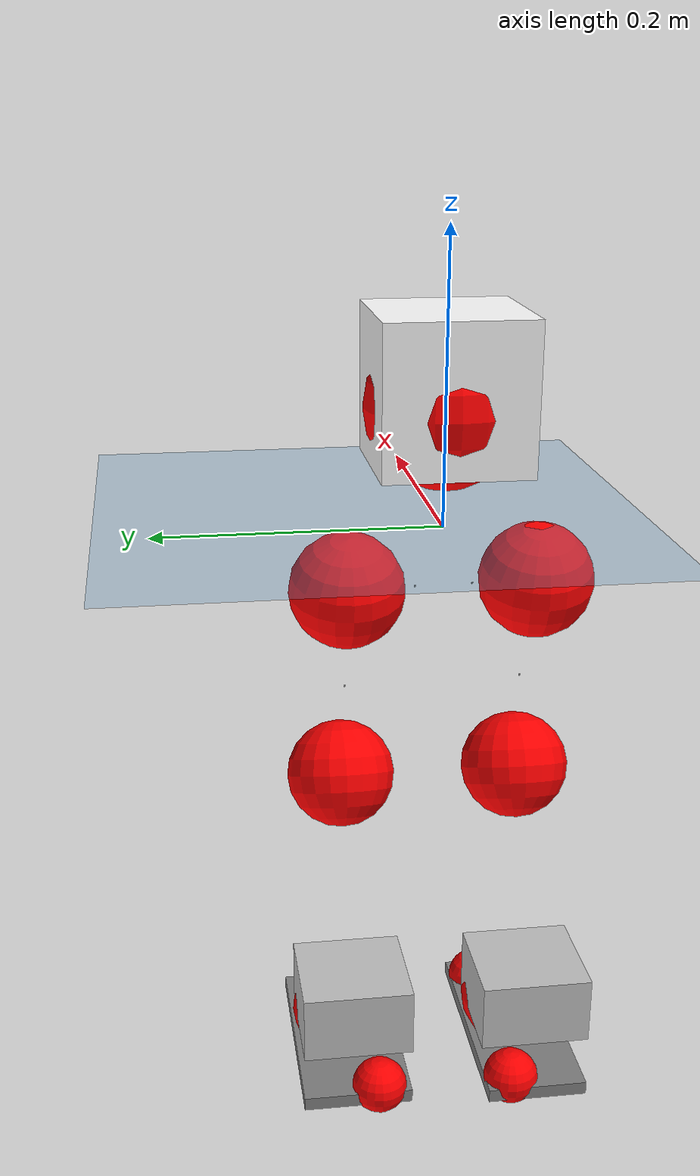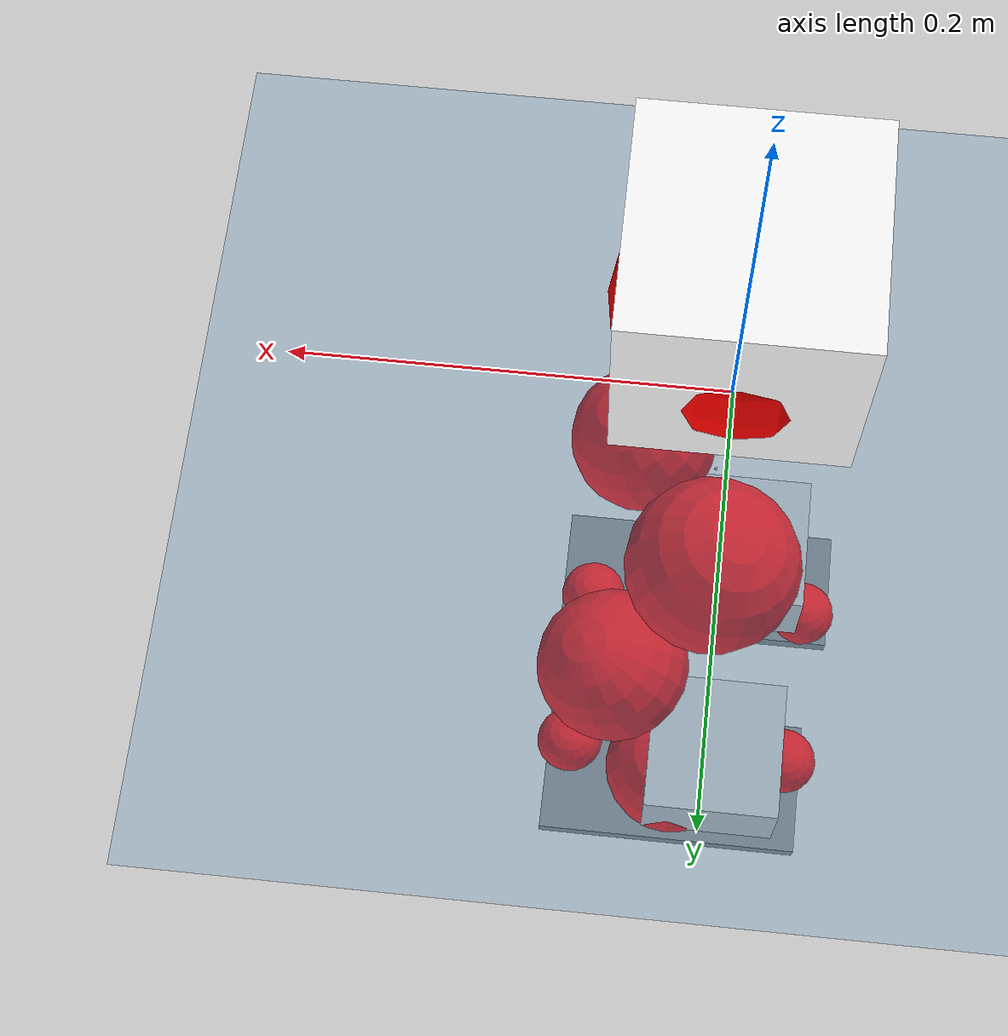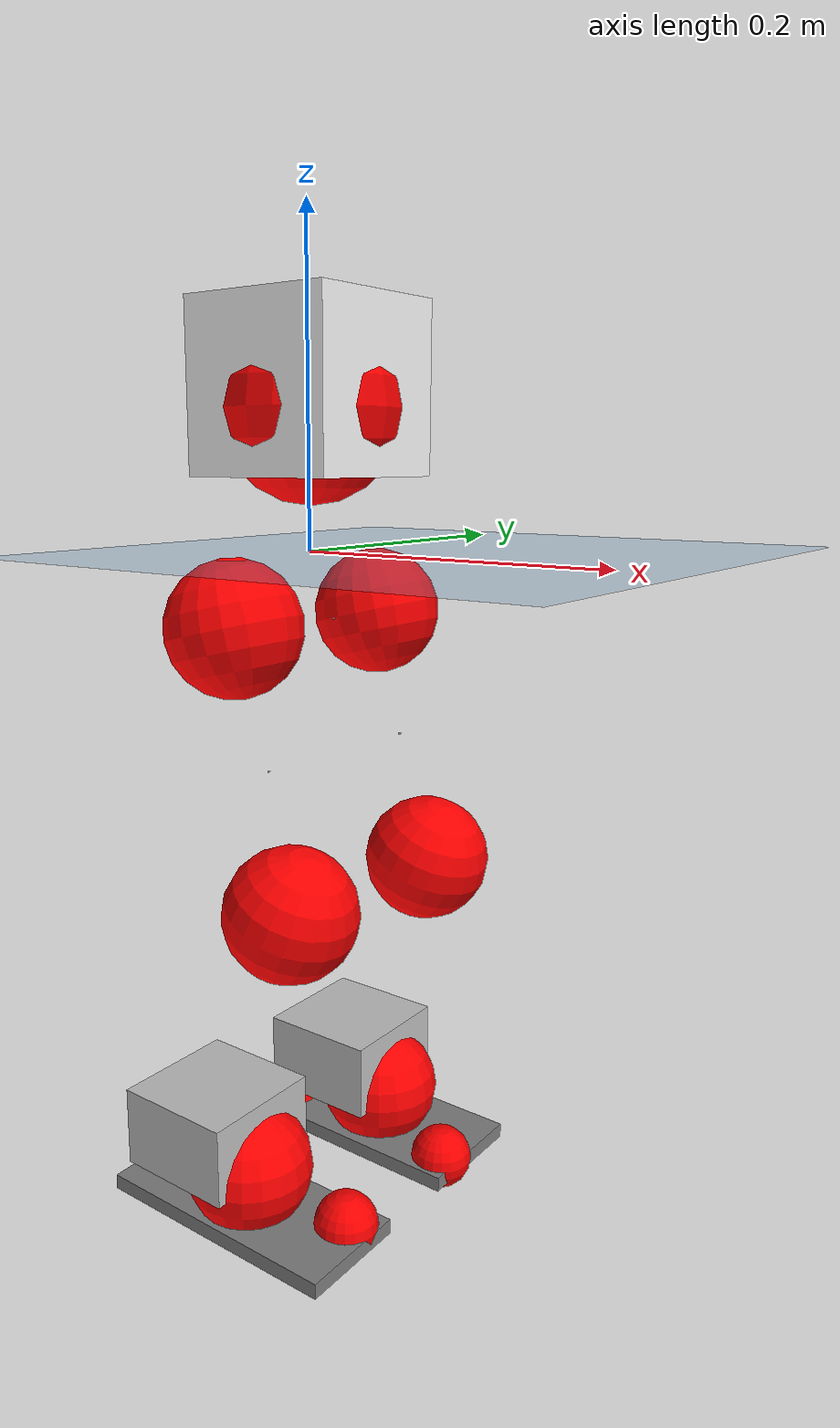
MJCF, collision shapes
<mujoco model="pi_12dof_release_v1">
  <compiler angle="radian" assetdir="assets" balanceinertia="true" inertiafromgeom="false"/>

  <option timestep="0.005" density="1.2" viscosity="2e-05"/>

  <size nkey="1"/>

  <visual>
    <quality shadowsize="8192"/>
    <map shadowclip="0.5"/>
  </visual>

  <default>
    <default class="/">
      <joint armature="0.01" damping="0.01" frictionloss="0.01"/>
      <geom contype="0" conaffinity="0" group="1" solref="-1000 -80"/>
      <site size="0.01 0.005 0.005" group="5"/>
      <general forcelimited="true" biastype="affine" gainprm="20" biasprm="0 -20 -0.5"/>
      <default class="foot">
        <geom size="0.0845 0.036 0.005" type="box" condim="6" group="4" priority="1" friction="0.9 0.2 0.2" solimp="0.015 1 0.005"/>
      </default>
      <default class="reward_collision_sphere">
        <geom group="5" rgba="1 0 0 1"/>
      </default>
    </default>
  </default>

  <asset>
    <texture type="skybox" colorspace="auto" name="//unnamed_texture_0" builtin="gradient" rgb1="0.95 0.95 0.95" rgb2="0.95 0.95 0.95" width="100" height="600"/>
    <texture type="2d" colorspace="auto" name="texplane" builtin="checker" rgb1="0.345 0.575 0.748" rgb2="0.345 0.575 0.748" markrgb="1 1 1" width="512" height="512"/>
    <material name="MatPlane" class="/" texture="texplane" texuniform="true" texrepeat="2 2" specular="0.9"/>
    <mesh name="baselink_1" class="/" file="baselink_1.STL"/>
    <mesh name="r_hip_pitch_link" class="/" file="r_hip_pitch_link.STL"/>
    <mesh name="r_hip_roll_link" class="/" file="r_hip_roll_link.STL"/>
    <mesh name="r_thigh_link" class="/" file="r_thigh_link.STL"/>
    <mesh name="r_calf_link" class="/" file="r_calf_link.STL"/>
    <mesh name="r_ankle_pitch_link" class="/" file="r_ankle_pitch_link.STL"/>
    <mesh name="r_ankle_roll_link" class="/" file="r_ankle_roll_link.STL"/>
    <mesh name="l_hip_pitch_link" class="/" file="l_hip_pitch_link.STL"/>
    <mesh name="l_hip_roll_link" class="/" file="l_hip_roll_link.STL"/>
    <mesh name="l_thigh_link" class="/" file="l_thigh_link.STL"/>
    <mesh name="l_calf_link" class="/" file="l_calf_link.STL"/>
    <mesh name="l_ankle_pitch_link" class="/" file="l_ankle_pitch_link.STL"/>
    <mesh name="l_ankle_roll_link" class="/" file="l_ankle_roll_link.STL"/>
  </asset>

  <worldbody>
    <geom name="floor" class="/" size="100 100 0.125" type="plane" group="0" material="MatPlane"/>
    <light name="toplight_shadow" class="/" pos="0 0 5" dir="0.0990148 0.0990148 -0.990148" type="directional" ambient="0.04 0.04 0.04" diffuse="0.55 0.55 0.55" specular="0.12 0.12 0.12"/>
    <light name="toplight_fill" class="/" pos="0 0 5" dir="0.0990148 0.0990148 -0.990148" type="directional" castshadow="false" ambient="0.04 0.04 0.04" diffuse="0.3 0.3 0.3" specular="0.08 0.08 0.08"/>
    <body name="trunk" pos="0.00106516 9.21887e-05 -0.000761666" quat="1 -1.79855e-05 1.39064e-05 -6.11495e-05">
      <inertial pos="-0.000337148 -0.00294449 0.0489172" quat="0.698838 0.00951284 0.00798186 0.715172" mass="2.36428" diaginertia="0.00976792 0.00407056 0.0103411"/>
      <joint name="//unnamed_joint_0" type="free"/>
      <geom name="//unnamed_geom_1" class="/" type="mesh" density="0" rgba="1 1 1 1" mesh="baselink_1"/>
      <geom name="//unnamed_geom_2" class="/" size="0.0508771 0.0508771 0.0508771" pos="0 0 0.0960864" type="box" rgba="1 1 1 1"/>
      <geom name="//unnamed_geom_3" class="reward_collision_sphere" size="0.0559648" pos="0 0 0.0840756"/>
      <site name="imu" class="/" pos="0.0131596 0.000263548 -0.0131327" size="0.0101754"/>
      <camera name="track" class="/" pos="0 -1.70465 0" quat="0.707107 0.707107 0 0" mode="trackcom"/>
      <camera name="ego_camera" class="/" pos="0.0749414 0 0.216194" quat="-0.5 -0.5 0.5 0.5"/>
      <body name="r_hip_pitch_link" pos="-0.00183977 -0.0211472 -0.0399392" quat="0.992205 8.20953e-06 -0.124619 3.5708e-05">
        <inertial pos="0.00122656 -0.0500263 -0.000171959" quat="-0.0193941 0.706254 -0.0282436 0.707129" mass="0.378637" diaginertia="0.000104481 4.14868e-05 0.000201376"/>
        <joint name="r_hip_pitch_joint" class="/" pos="0 0 0" axis="0.0031358 -0.99999 -0.00317164" stiffness="0.007236" range="-1.74798 1.19628" armature="0.00893309" damping="0.0129137" frictionloss="0.0103338"/>
        <geom name="//unnamed_geom_4" class="/" type="mesh" density="0" rgba="0.75294 0.75294 0.75294 1" mesh="r_hip_pitch_link"/>
        <geom name="//unnamed_geom_5" class="/" size="0.000508771 0.000508771 0.000508771" type="box" rgba="0.75294 0.75294 0.75294 1"/>
        <body name="r_hip_roll_link" pos="-0.000849215 -0.0450971 0.00108261" quat="0.999999 -0.000997907 0.000761364 -0.000260461">
          <inertial pos="-0.00148105 1.30697e-05 -0.0735141" quat="0.710976 -0.0714434 -0.0826824 0.694675" mass="0.399791" diaginertia="0.000331317 0.000120532 0.000316089"/>
          <joint name="r_hip_roll_joint" class="/" pos="0 0 0" axis="-0.999966 -0.0079044 0.00248559" range="-0.125873 0.499487" armature="0.00955912" damping="0" frictionloss="0.0115308"/>
          <geom name="//unnamed_geom_6" class="/" type="mesh" density="0" rgba="0.75294 0.75294 0.75294 1" mesh="r_hip_roll_link"/>
          <geom name="//unnamed_geom_7" class="/" size="0.000508771 0.000508771 0.000508771" type="box" rgba="0.75294 0.75294 0.75294 1"/>
          <geom name="//unnamed_geom_8" class="reward_collision_sphere" size="0.0407017"/>
          <body name="r_thigh_link" pos="0.00157216 0.00291153 -0.0839622" quat="1 3.80246e-05 0.000544055 -0.000218187">
            <inertial pos="0.000657483 -0.000858076 -0.0572678" quat="0.737475 0.675374 -0.000351328 -0.000209943" mass="0.119397" diaginertia="0.000122082 4.30643e-05 0.000144401"/>
            <joint name="r_thigh_joint" class="/" pos="0 0 0" axis="0.00027358 -0.0026041 -0.999997" range="-0.335625 0.622855" armature="0.0116519" damping="0.00339054" frictionloss="0.0103111"/>
            <geom name="//unnamed_geom_9" class="/" type="mesh" density="0" rgba="0.75294 0.75294 0.75294 1" mesh="r_thigh_link"/>
            <geom name="//unnamed_geom_10" class="/" size="0.000508771 0.000508771 0.000508771" type="box" rgba="0.75294 0.75294 0.75294 1"/>
            <body name="r_calf_link" pos="-0.00220648 -0.00341429 -0.0842499" quat="0.947659 1.04349e-06 0.319284 3.0854e-05">
              <inertial pos="-0.00176138 -0.00364878 -0.0852623" quat="0.999887 -0.0138179 -0.00593857 -0.00052626" mass="0.845788" diaginertia="0.00338483 0.00161148 0.000422237"/>
              <joint name="r_calf_joint" class="/" pos="0 0 0" axis="0.00531987 -0.999983 0.00250903" range="-1.64796 0.640465" armature="0.0101051" damping="0.0150169" frictionloss="0.010359"/>
              <geom name="//unnamed_geom_11" class="/" type="mesh" density="0" rgba="0.75294 0.75294 0.75294 1" mesh="r_calf_link"/>
              <geom name="//unnamed_geom_12" class="/" size="0.000508771 0.000508771 0.000508771" type="box" rgba="0.75294 0.75294 0.75294 1"/>
              <geom name="//unnamed_geom_13" class="reward_collision_sphere" size="0.0407017"/>
              <body name="r_ankle_pitch_link" pos="0.00152634 0.000684865 -0.170251" quat="0.979846 0.000499181 -0.199756 -1.3861e-06">
                <inertial pos="0.00746655 0.00395743 -0.000988382" quat="-0.00140403 0.708588 -0.00338851 0.705613" mass="0.192222" diaginertia="0.00030535 9.79638e-05 0.00031272"/>
                <joint name="r_ankle_pitch_joint" class="/" pos="0 0 0" axis="-0.00309869 -0.999985 -0.0045373" range="-1.24819 0.528446" armature="0.0106818" damping="0" frictionloss="0.0101096"/>
                <geom name="//unnamed_geom_14" class="/" type="mesh" density="0" rgba="0.75294 0.75294 0.75294 1" mesh="r_ankle_pitch_link"/>
                <geom name="//unnamed_geom_15" class="/" size="0.0396841 0.0407017 0.0254385" type="box" rgba="0.75294 0.75294 0.75294 1"/>
                <body name="r_ankle_roll_link" pos="0.0749681 0.00232957 7.2122e-06" quat="1 -0.00023254 0.000259123 0.000135388">
                  <inertial pos="-0.0259527 -0.000111016 -0.0169385" quat="0.558708 0.4396 0.424406 0.560782" mass="0.566399" diaginertia="0.00115094 0.000476237 0.000723649"/>
                  <joint name="r_ankle_roll_joint" class="/" pos="0 0 0" axis="-0.999991 0.00425009 0.000355319" range="-0.124889 0.156406" armature="0.0115368" damping="0.00964579" frictionloss="0.00963539"/>
                  <geom name="//unnamed_geom_16" class="/" type="mesh" density="0" rgba="0.75294 0.75294 0.75294 1" mesh="r_ankle_roll_link"/>
                  <geom name="//unnamed_geom_17" class="/" type="mesh" rgba="0.75294 0.75294 0.75294 1" mesh="r_ankle_roll_link"/>
                  <geom name="right_foot" class="foot" size="0.0853428 0.0367469 0.00494177" pos="-0.0509602 0 -0.0528475"/>
                  <geom name="//unnamed_geom_19" class="reward_collision_sphere" size="0.0407017" pos="-0.049961 0 -0.0240216"/>
                  <geom name="//unnamed_geom_20" class="reward_collision_sphere" size="0.0203508" pos="0.0149883 0.0170465 -0.0480432"/>
                  <geom name="//unnamed_geom_21" class="reward_collision_sphere" size="0.0203508" pos="-0.119906 0.0170465 -0.0480432"/>
                  <site name="right_foot" class="foot" pos="-0.0509602 0 -0.0528475" size="0.0101754"/>
                </body>
              </body>
            </body>
          </body>
        </body>
      </body>
      <body name="l_hip_pitch_link" pos="0.00204553 0.0185227 -0.0419107" quat="0.9922 1.57424e-05 -0.124653 -4.43722e-06">
        <inertial pos="0.000985892 0.0470627 -0.00290811" quat="-0.0311342 0.703963 0.0367853 0.7086" mass="0.424039" diaginertia="0.000136376 4.94733e-05 0.000258462"/>
        <joint name="l_hip_pitch_joint" class="/" pos="0 0 0" axis="-0.000392544 0.999999 -0.00128556" range="-1.26715 1.74769" armature="0.0104515" damping="0.0156602" frictionloss="0.00946835"/>
        <geom name="//unnamed_geom_22" class="/" type="mesh" density="0" rgba="0.75294 0.75294 0.75294 1" mesh="l_hip_pitch_link"/>
        <geom name="//unnamed_geom_23" class="/" size="0.000508771 0.000508771 0.000508771" type="box" rgba="0.75294 0.75294 0.75294 1"/>
        <body name="l_hip_roll_link" pos="-0.00222539 0.04807 0.000643054" quat="1 -0.000335939 -6.21864e-05 0.000101376">
          <inertial pos="-0.0043891 -0.000845538 -0.0758105" quat="0.699959 -0.0756792 -0.0776504 0.705904" mass="0.403138" diaginertia="0.0003144 0.000124787 0.000312265"/>
          <joint name="l_hip_roll_joint" class="/" pos="0 0 0" axis="-0.999992 0.00370989 0.00150315" range="-0.515874 0.140615" armature="0.0107404" damping="0.0156336" frictionloss="0.00981382"/>
          <geom name="//unnamed_geom_24" class="/" type="mesh" density="0" rgba="0.75294 0.75294 0.75294 1" mesh="l_hip_roll_link"/>
          <geom name="//unnamed_geom_25" class="/" size="0.000508771 0.000508771 0.000508771" type="box" rgba="0.75294 0.75294 0.75294 1"/>
          <geom name="//unnamed_geom_26" class="reward_collision_sphere" size="0.0407017"/>
          <body name="l_thigh_link" pos="-0.000289371 -0.000905499 -0.0828733" quat="1 0.000325128 -0.000156033 -0.000276019">
            <inertial pos="0.000568135 0.000888358 -0.0562651" quat="0.673021 0.739609 -0.00458115 -0.000542404" mass="0.122403" diaginertia="0.000126233 4.53057e-05 0.000147701"/>
            <joint name="l_thigh_joint" class="/" pos="0 0 0" axis="-1.32946e-05 -0.000995573 -1" range="-0.653856 0.276722" armature="0.00975582" damping="0.00660552" frictionloss="0.010143"/>
            <geom name="//unnamed_geom_27" class="/" type="mesh" density="0" rgba="0.75294 0.75294 0.75294 1" mesh="l_thigh_link"/>
            <geom name="//unnamed_geom_28" class="/" size="0.000508771 0.000508771 0.000508771" type="box" rgba="0.75294 0.75294 0.75294 1"/>
            <body name="l_calf_link" pos="0.00187817 0.000232993 -0.0843061" quat="0.94767 -0.000184046 0.319252 -9.91061e-05">
              <inertial pos="-0.000443208 0.00277048 -0.0866011" quat="0.999855 0.000830481 -0.00657159 0.0156834" mass="0.852379" diaginertia="0.00339892 0.00152032 0.000420697"/>
              <joint name="l_calf_joint" class="/" pos="0 0 0" axis="-0.00205854 0.999942 0.0105772" range="-0.6437 1.6385" armature="0.0101464" damping="0" frictionloss="0.00984929"/>
              <geom name="//unnamed_geom_29" class="/" type="mesh" density="0" rgba="0.75294 0.75294 0.75294 1" mesh="l_calf_link"/>
              <geom name="//unnamed_geom_30" class="/" size="0.000508771 0.000508771 0.000508771" type="box" rgba="0.75294 0.75294 0.75294 1"/>
              <geom name="//unnamed_geom_31" class="reward_collision_sphere" size="0.0407017"/>
              <body name="l_ankle_pitch_link" pos="0.00274959 0.00012465 -0.171058" quat="0.979931 0.000811916 -0.199336 -0.000428935">
                <inertial pos="0.00529143 -0.000153591 -0.000929328" quat="-0.00265811 0.707445 0.00190158 0.70676" mass="0.178393" diaginertia="0.000294813 9.7976e-05 0.000296332"/>
                <joint name="l_ankle_pitch_joint" class="/" pos="0 0 0" axis="0.00165099 0.999998 -0.000526561" range="-0.517243 1.27883" armature="0.00957517" damping="0.00861953" frictionloss="0.0100104"/>
                <geom name="//unnamed_geom_32" class="/" type="mesh" density="0" rgba="0.75294 0.75294 0.75294 1" mesh="l_ankle_pitch_link"/>
                <geom name="//unnamed_geom_33" class="/" size="0.0396841 0.0407017 0.0254385" type="box" rgba="0.75294 0.75294 0.75294 1"/>
                <body name="l_ankle_roll_link" pos="0.0741402 0.00222488 0.000242965" quat="0.999999 6.02315e-05 0.00114469 -0.000517033">
                  <inertial pos="-0.0224255 -0.000853278 -0.0182808" quat="0.566822 0.42403 0.434762 0.556681" mass="0.557527" diaginertia="0.0011213 0.000464431 0.000707691"/>
                  <joint name="l_ankle_roll_joint" class="/" pos="0 0 0" axis="-1 -3.16e-05 0.000566582" range="-0.105349 0.123191" armature="0.0113652" damping="0.0224784" frictionloss="0.0101225"/>
                  <geom name="//unnamed_geom_34" class="/" type="mesh" density="0" rgba="0.75294 0.75294 0.75294 1" mesh="l_ankle_roll_link"/>
                  <geom name="//unnamed_geom_35" class="/" type="mesh" rgba="0.75294 0.75294 0.75294 1" mesh="l_ankle_roll_link"/>
                  <geom name="left_foot" class="foot" size="0.0791145 0.0401012 0.00493654" pos="-0.0509602 0 -0.0528475"/>
                  <geom name="//unnamed_geom_37" class="reward_collision_sphere" size="0.0407017" pos="-0.049961 0 -0.0240216"/>
                  <geom name="//unnamed_geom_38" class="reward_collision_sphere" size="0.0203508" pos="0.0149883 -0.0170465 -0.0480432"/>
                  <geom name="//unnamed_geom_39" class="reward_collision_sphere" size="0.0203508" pos="-0.119906 -0.0170465 -0.0480432"/>
                  <site name="left_foot" class="foot" pos="-0.0509602 0 -0.0528475" size="0.0101754"/>
                </body>
              </body>
            </body>
          </body>
        </body>
      </body>
    </body>
  </worldbody>

  <contact>
    <pair class="/" geom1="floor" geom2="right_foot" name="//unnamed_contact_1"/>
    <pair class="/" geom1="floor" geom2="left_foot" name="//unnamed_contact_0"/>
  </contact>

  <actuator>
    <general name="r_hip_pitch_joint" class="/" joint="r_hip_pitch_joint" forcerange="-23.1193 23.1193" gainprm="19.0949" biasprm="0 -19.0949 -0.518108"/>
    <general name="r_hip_roll_joint" class="/" joint="r_hip_roll_joint" forcerange="-21.4618 21.4618" gainprm="19.0949" biasprm="0 -19.0949 -0.518108"/>
    <general name="r_thigh_joint" class="/" joint="r_thigh_joint" forcerange="-21.7178 21.7178" gainprm="19.0949" biasprm="0 -19.0949 -0.518108"/>
    <general name="r_calf_joint" class="/" joint="r_calf_joint" forcerange="-23.431 23.431" gainprm="19.0949" biasprm="0 -19.0949 -0.518108"/>
    <general name="r_ankle_pitch_joint" class="/" joint="r_ankle_pitch_joint" forcerange="-20.8338 20.8338" gainprm="19.0949" biasprm="0 -19.0949 -0.518108"/>
    <general name="r_ankle_roll_joint" class="/" joint="r_ankle_roll_joint" forcerange="-21.4184 21.4184" gainprm="19.0949" biasprm="0 -19.0949 -0.518108"/>
    <general name="l_hip_pitch_joint" class="/" joint="l_hip_pitch_joint" forcerange="-19.8036 19.8036" gainprm="19.0949" biasprm="0 -19.0949 -0.518108"/>
    <general name="l_hip_roll_joint" class="/" joint="l_hip_roll_joint" forcerange="-19.2529 19.2529" gainprm="19.0949" biasprm="0 -19.0949 -0.518108"/>
    <general name="l_thigh_joint" class="/" joint="l_thigh_joint" forcerange="-22.0375 22.0375" gainprm="19.0949" biasprm="0 -19.0949 -0.518108"/>
    <general name="l_calf_joint" class="/" joint="l_calf_joint" forcerange="-21.5925 21.5925" gainprm="19.0949" biasprm="0 -19.0949 -0.518108"/>
    <general name="l_ankle_pitch_joint" class="/" joint="l_ankle_pitch_joint" forcerange="-22.6423 22.6423" gainprm="19.0949" biasprm="0 -19.0949 -0.518108"/>
    <general name="l_ankle_roll_joint" class="/" joint="l_ankle_roll_joint" forcerange="-22.1817 22.1817" gainprm="19.0949" biasprm="0 -19.0949 -0.518108"/>
  </actuator>

  <sensor>
    <gyro site="imu" name="imu_angular_velocity"/>
    <velocimeter site="imu" name="imu_linear_velocity"/>
    <framelinvel objtype="site" objname="left_foot" name="left_foot_global_linear_velocity"/>
    <framelinvel objtype="site" objname="right_foot" name="right_foot_global_linear_velocity"/>
  </sensor>

  <keyframe>
    <key name="home" qpos="0 0 0.291 1 0 0 0 0.4 0 0 -0.8 0.4 0 -0.4 0 0 0.8 -0.4 0"/>
  </keyframe>
</mujoco>
